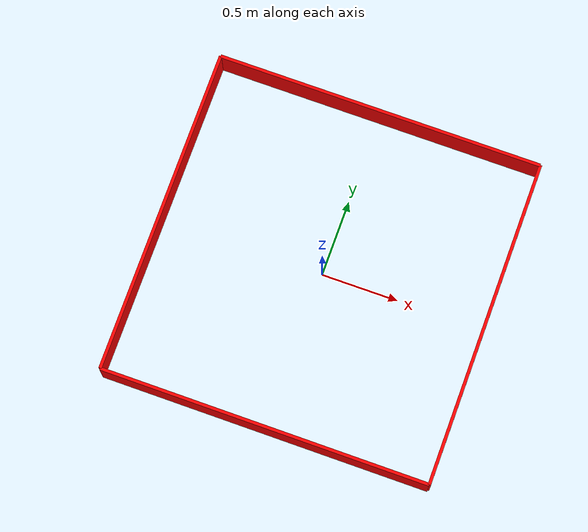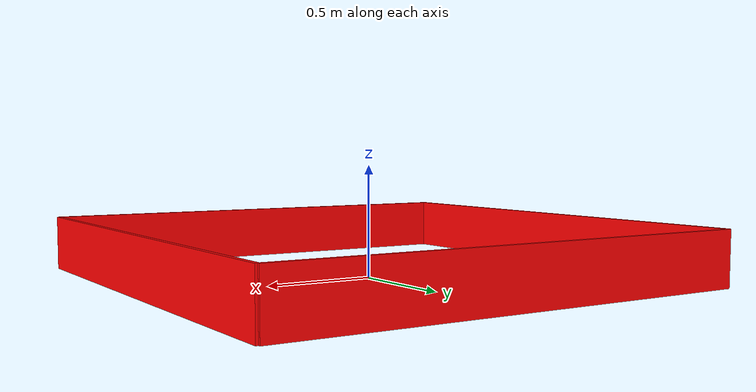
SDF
<?xml version="1.0" ?>
<sdf version="1.4">
    <model name="testbed">
        <static>true</static> <!-- Wall will be immovable -->
        <link name="link_1">
            <pose>1.068 0 0.124 0 0 0</pose>
            <visual name="visual">
                <material>
                    <ambient>1 0 0 1</ambient>
                    <diffuse>1 0 0 1</diffuse>
                    <specular>0.1 0.1 0.1 1</specular>
                    <emissive>0 0 0 0</emissive>
                </material>
                <geometry>
                    <box>
                        <size>0.02 2.135 0.246</size>
                    </box>
                </geometry>
            </visual>
            <inertial>
                <mass>1.0</mass>
                <inertia>
                    <ixx>1.0</ixx>
                    <ixy>0.0</ixy>
                    <ixz>0.0</ixz>
                    <iyy>1.0</iyy>
                    <iyz>0.0</iyz>
                    <izz>1.0</izz>
                </inertia>
            </inertial>
            <collision name="collision">
                <geometry>
                    <box>
                        <size>0.02 2.135 0.246</size>
                    </box>
                </geometry>
            </collision>
        </link>

        <link name="link_2">
            <pose>0 1.068 0.124 0 0 1.57</pose>
            <visual name="visual">
                <material>
                    <ambient>1 0 0 1</ambient>
                    <diffuse>1 0 0 1</diffuse>
                    <specular>0.1 0.1 0.1 1</specular>
                    <emissive>0 0 0 0</emissive>
                </material>
                <geometry>
                    <box>
                        <size>0.02 2.135 0.246</size>
                    </box>
                </geometry>
            </visual>
            <inertial>
                <mass>1.0</mass>
                <inertia>
                    <ixx>1.0</ixx>
                    <ixy>0.0</ixy>
                    <ixz>0.0</ixz>
                    <iyy>1.0</iyy>
                    <iyz>0.0</iyz>
                    <izz>1.0</izz>
                </inertia>
            </inertial>
            <collision name="collision">
                <geometry>
                    <box>
                        <size>0.02 2.135 0.246</size>
                    </box>
                </geometry>
            </collision>
        </link>

        <link name="link_3">
            <pose>-1.068 0 0.124 0 0 0</pose>
            <visual name="visual">
                <material>
                    <ambient>1 0 0 1</ambient>
                    <diffuse>1 0 0 1</diffuse>
                    <specular>0.1 0.1 0.1 1</specular>
                    <emissive>0 0 0 0</emissive>
                </material>
                <geometry>
                    <box>
                        <size>0.02 2.135 0.246</size>
                    </box>
                </geometry>
            </visual>
            <inertial>
                <mass>1.0</mass>
                <inertia>
                    <ixx>1.0</ixx>
                    <ixy>0.0</ixy>
                    <ixz>0.0</ixz>
                    <iyy>1.0</iyy>
                    <iyz>0.0</iyz>
                    <izz>1.0</izz>
                </inertia>
            </inertial>
            <collision name="collision">
                <geometry>
                    <box>
                        <size>0.02 2.135 0.246</size>
                    </box>
                </geometry>
            </collision>
        </link>

        <link name="link_4">
            <pose>0 -1.068 0.124 0 0 -1.57</pose>
            <visual name="visual">
                <material>
                    <ambient>1 0 0 1</ambient>
                    <diffuse>1 0 0 1</diffuse>
                    <specular>0.1 0.1 0.1 1</specular>
                    <emissive>0 0 0 0</emissive>
                </material>
                <geometry>
                    <box>
                        <size>0.02 2.135 0.246</size>
                    </box>
                </geometry>
            </visual>
            <inertial>
                <mass>1.0</mass>
                <inertia>
                    <ixx>1.0</ixx>
                    <ixy>0.0</ixy>
                    <ixz>0.0</ixz>
                    <iyy>1.0</iyy>
                    <iyz>0.0</iyz>
                    <izz>1.0</izz>
                </inertia>
            </inertial>
            <collision name="collision">
                <geometry>
                    <box>
                        <size>0.02 2.135 0.246</size>
                    </box>
                </geometry>
            </collision>
        </link>
    </model>
</sdf>
